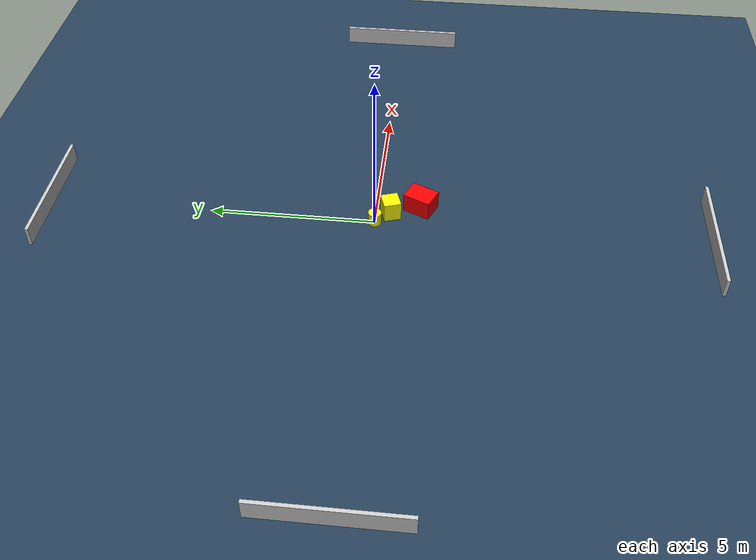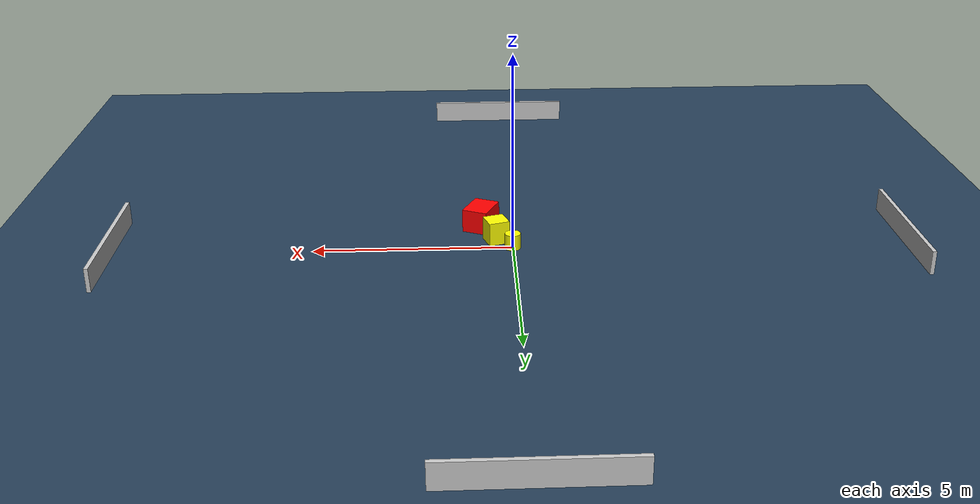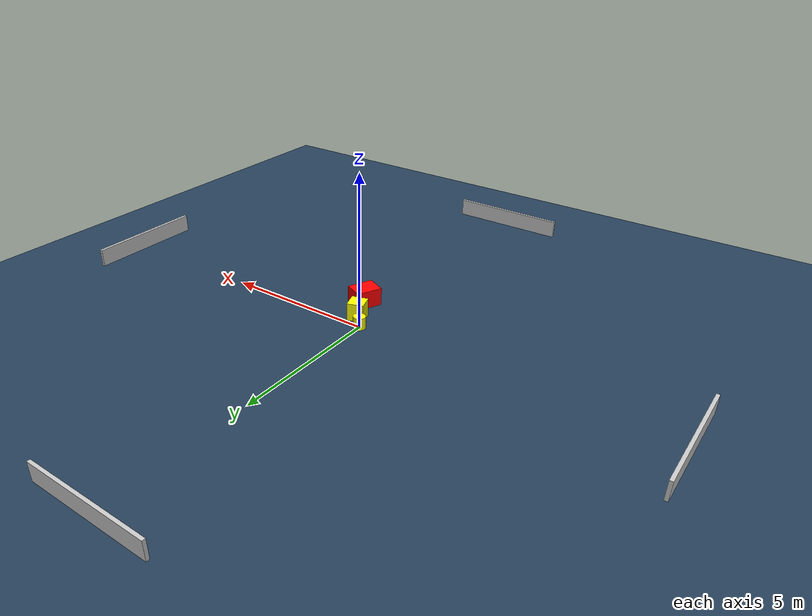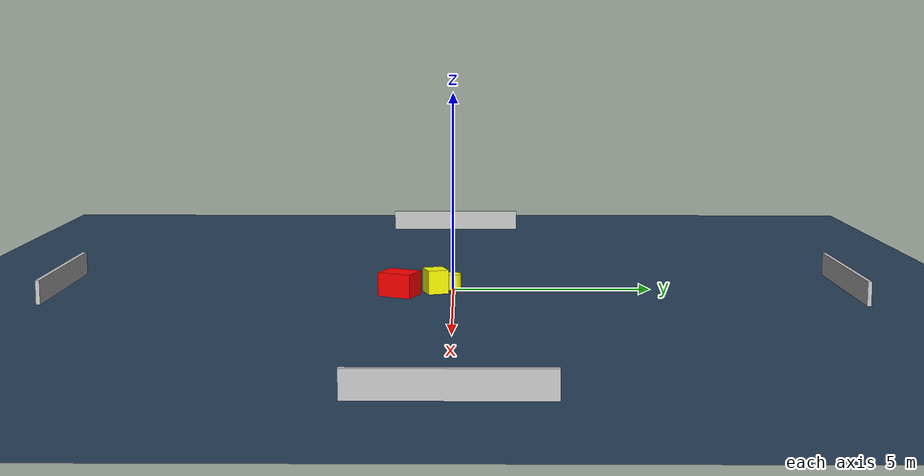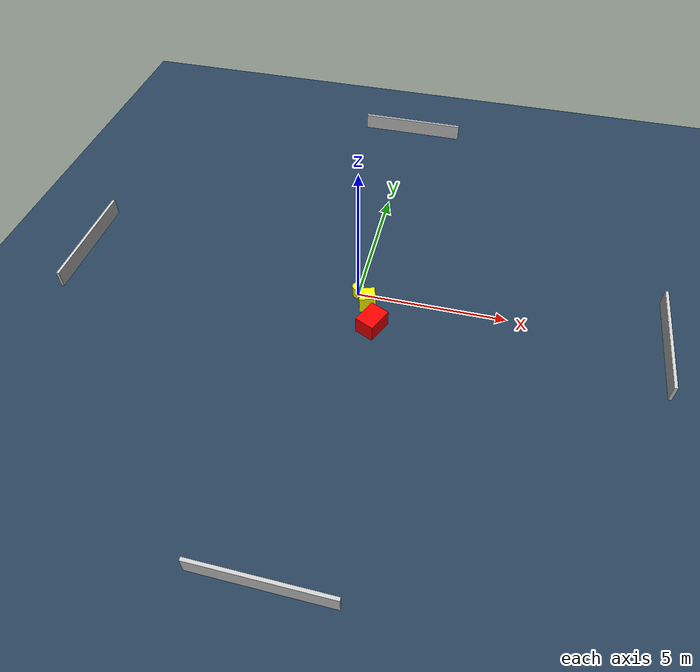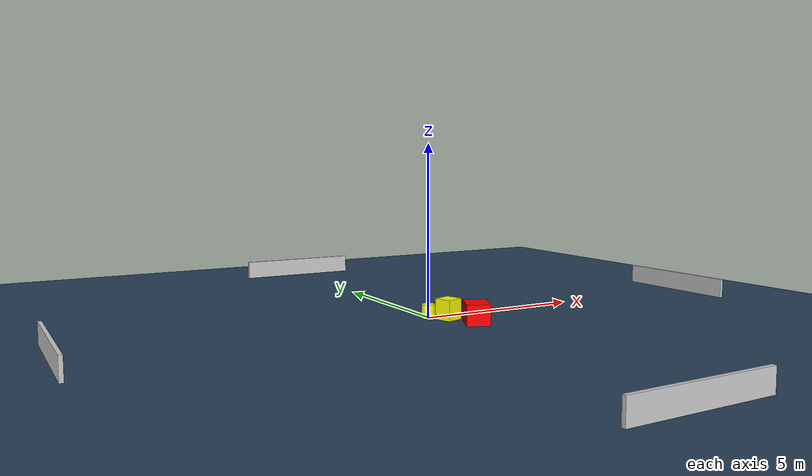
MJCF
<?xml version="1.0" ?>
<mujoco model="generated_environment">
  <option timestep="0.01" integrator="RK4" cone="elliptic"/>
  <default>
    <geom density="1"/>
  </default>
  <asset>
    <texture builtin="gradient" height="3072" name="skybox" rgb1="0.3 0.5 0.7" rgb2="0 0 0" type="skybox" width="512"/>
    <texture builtin="checker" height="300" name="groundplane" rgb1="0.2 0.3 0.4" rgb2="0.1 0.2 0.3" type="2d" width="300"/>
    <material name="groundplane" reflectance="0.2" texrepeat="5 5" texture="groundplane"/>
  </asset>
  <worldbody>
    <light dir="0 0 -1" directional="true" pos="0 0 1.5"/>
    <geom condim="3" friction="0.5 0.005 0.001" material="groundplane" name="floor" pos="0 0 0" size="0 0 0.05" type="plane"/>
    <body name="walls">
      <geom name="wall_1" condim="4" pos="-10.0 0.0 0.3" rgba="0.800000011920929 0.800000011920929 0.800000011920929 1.0" size="0.05 2.0 0.3" type="box"/>
      <geom name="wall_2" condim="4" pos="10.0 0.0 0.3" rgba="0.800000011920929 0.800000011920929 0.800000011920929 1.0" size="0.05 2.0 0.3" type="box"/>
      <geom name="wall_3" condim="4" pos="0.0 -10.0 0.3" rgba="0.800000011920929 0.800000011920929 0.800000011920929 1.0" size="2.0 0.05 0.3" type="box"/>
      <geom name="wall_4" condim="4" pos="0.0 10.0 0.3" rgba="0.800000011920929 0.800000011920929 0.800000011920929 1.0" size="2.0 0.05 0.3" type="box"/>
    </body>
    <body name="robot">
      <joint name="joint_x" type="slide" pos="0 0 0" axis="1 0 0"/>
      <joint name="joint_y" type="slide" pos="0 0 0" axis="0 1 0"/>
      <geom name="robot" type="cylinder" pos="0.0 0.0 0.2" size="0.2 0.2 0.0" mass="5.0" friction="1.0 0.005 0.0001" condim="4" rgba="1.0 1.0 0.0 1.0"/>
    </body>
    <body name="obstacle_1_movable">
      <geom name="obstacle_1_movable" condim="4" pos="0.4013722348314287 -0.44611278457835274 0.3" euler="0 0 197.74472088944677" friction="0.0 0.005 0.001" rgba="1.0 1.0 0.0 1.0" size="0.26752571495859906 0.2617990969810631 0.3" type="box" mass="0.1"/>
      <joint type="free"/>
    </body>
    <body name="obstacle_2_static">
      <geom name="obstacle_2_static" condim="4" pos="0.7686533925374366 -1.3330408145131591 0.3" euler="0 0 155.494816818954" friction="0.0 0.005 0.001" rgba="1.0 0.0 0.0 1.0" size="0.3318837478193246 0.4333174510146014 0.3" type="box"/>
    </body>
  </worldbody>
  <actuator>
    <motor name="actuator_x" joint="joint_x" gear="1" ctrlrange="-1 1"/>
    <motor name="actuator_y" joint="joint_y" gear="1" ctrlrange="-1 1"/>
  </actuator>
</mujoco>
